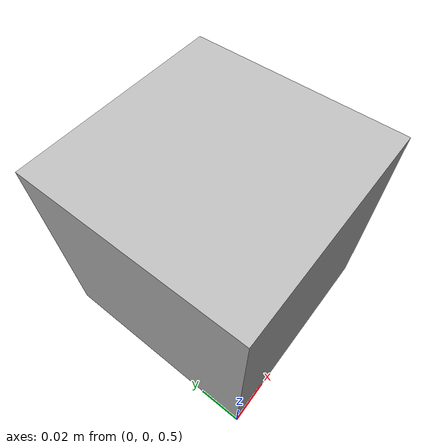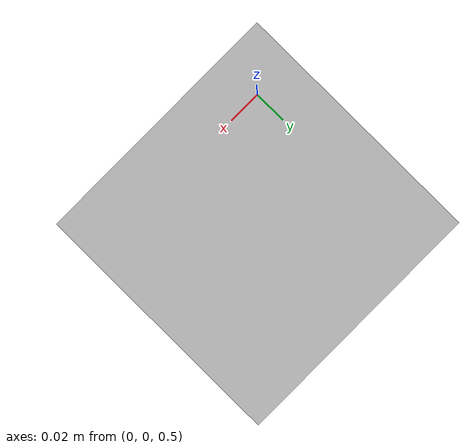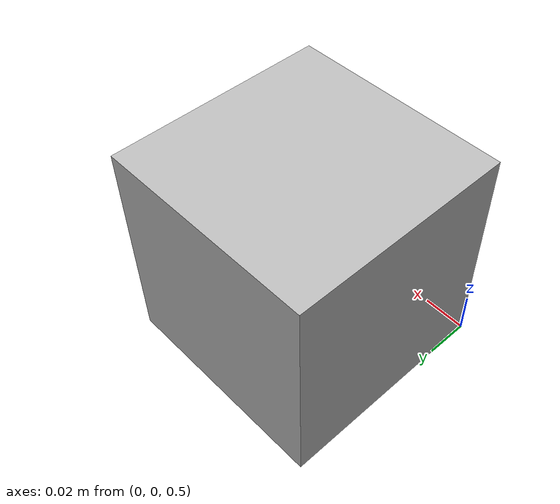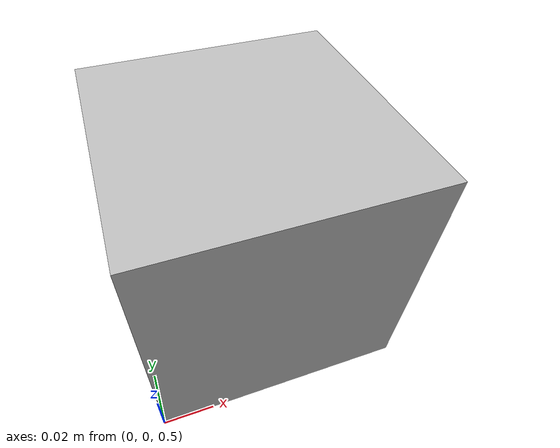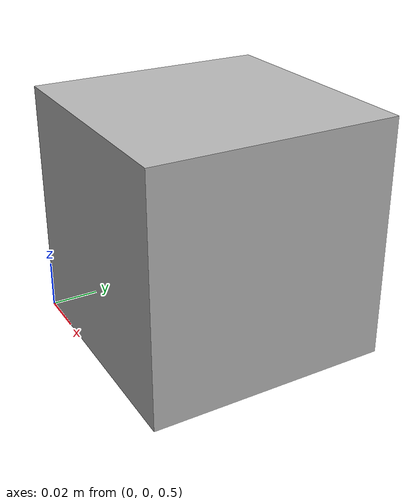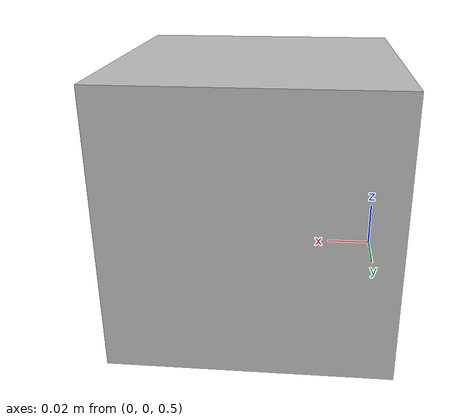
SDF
<?xml version="1.0" ?>
<sdf version="1.6">
  <world name="gpu_radar_sensor">
    <physics name="1ms" type="ode">
      <max_step_size>0.001</max_step_size>
      <real_time_factor>0</real_time_factor>
    </physics>
    <model name="gpu_radar">
      <pose>0 0 0.5 0 0 0.0 </pose>
      <link name="gpu_radar_link">
        <pose>0.05 0.05 0.05 0 0 0</pose>
        <inertial>
          <mass>0.1</mass>
          <inertia>
            <ixx>0.000166667</ixx>
            <iyy>0.000166667</iyy>
            <izz>0.000166667</izz>
          </inertia>
        </inertial>
        <collision name="collision">
          <geometry>
            <box>
              <size>0.1 0.1 0.1</size>
            </box>
          </geometry>
        </collision>
        <visual name="visual">
          <geometry>
            <box>
              <size>0.1 0.1 0.1</size>
            </box>
          </geometry>
        </visual>
        <sensor name='gpu_radar' type='gpu_radar'>"
          <topic>radar</topic>
          <update_rate>10</update_rate>
          <ray>
            <scan>
              <horizontal>
                <samples>12</samples>
                <resolution>1</resolution>
                <min_angle>-1.396263</min_angle>
                <max_angle>1.396263</max_angle>
              </horizontal>
              <vertical>
                <samples>4</samples>
                <resolution>0.01</resolution>
                <min_angle>-0.39</min_angle>
                <max_angle>0.39</max_angle>
              </vertical>
            </scan>
            <range>
              <min>0.08</min>
              <max>20.0</max>
              <resolution>0.04</resolution>
            </range>
          </ray>
          <alwaysOn>1</alwaysOn>
          <visualize>true</visualize>
        </sensor>
      </link>
      <static>true</static>
    </model>
  </world>
</sdf>
